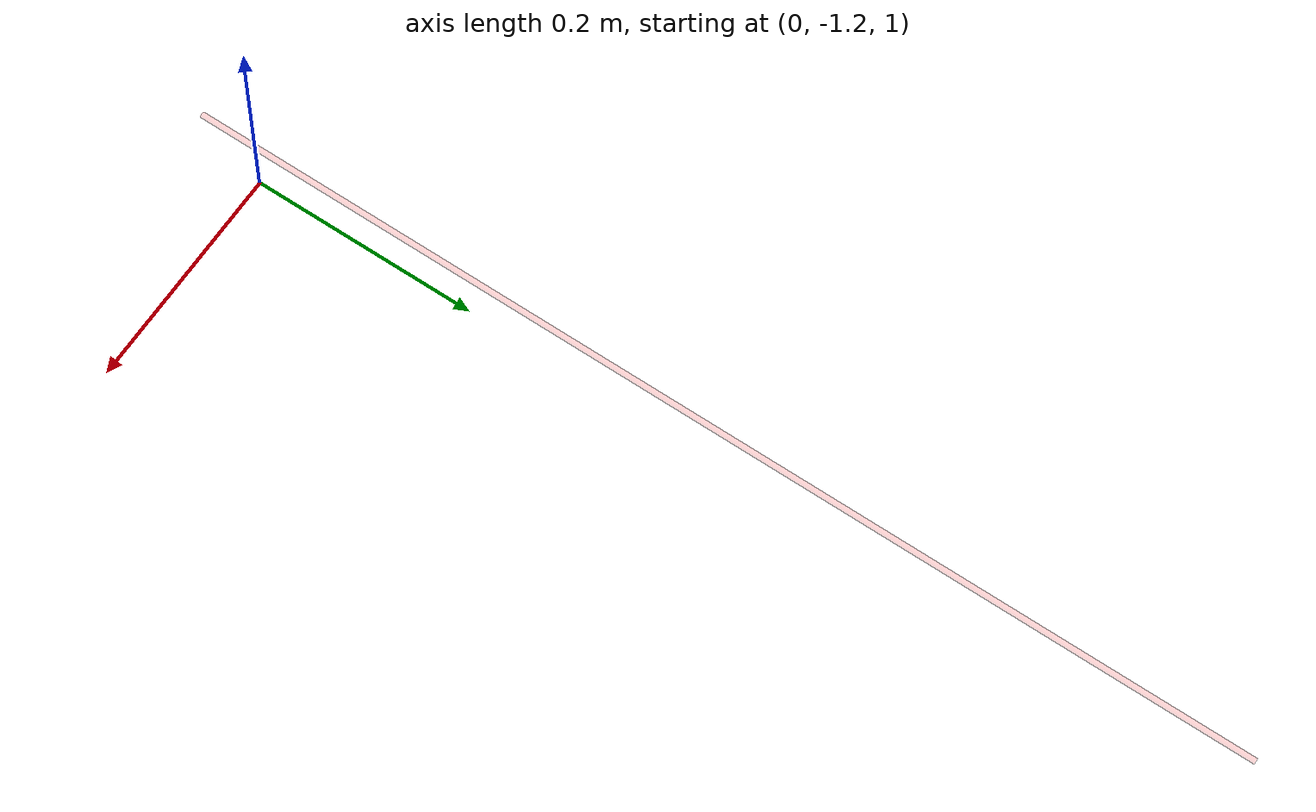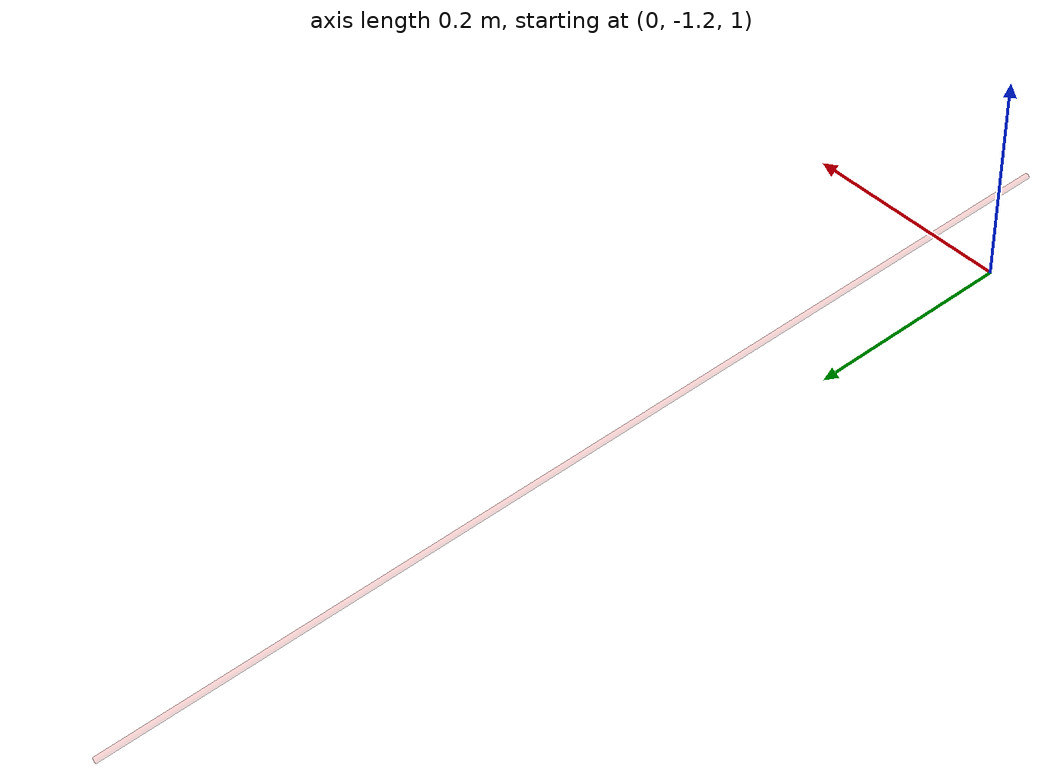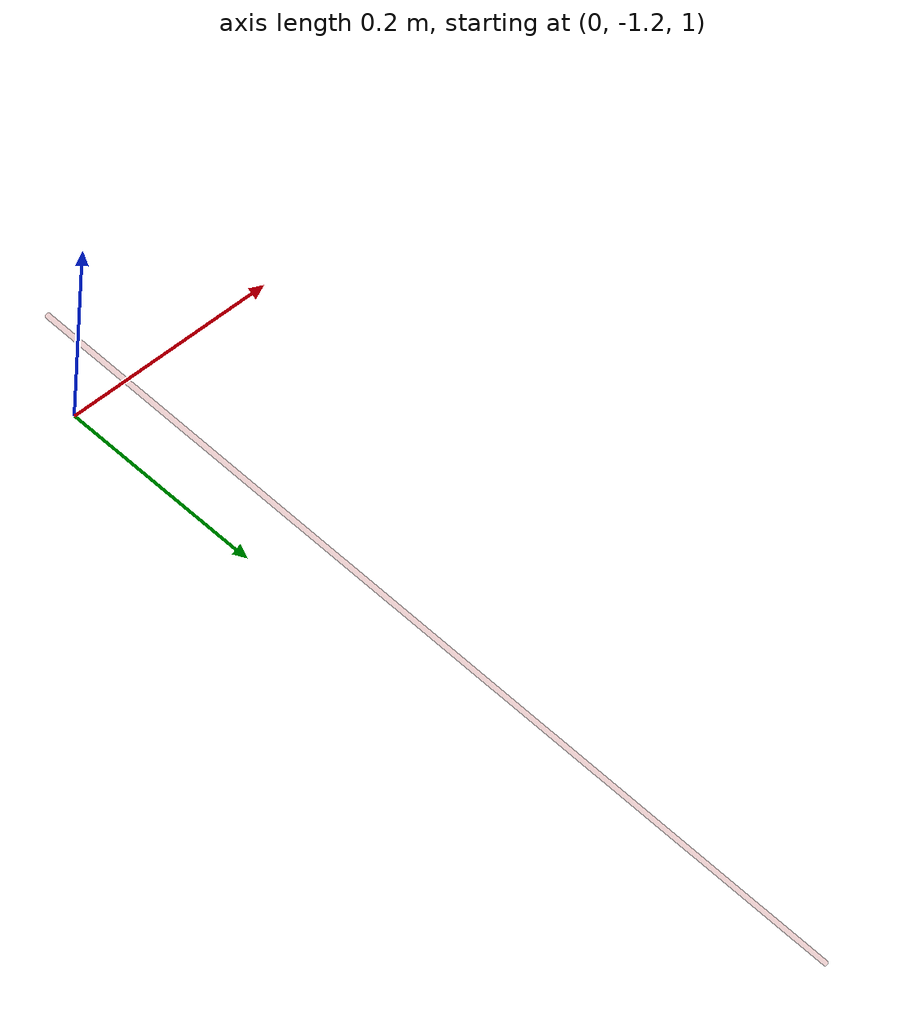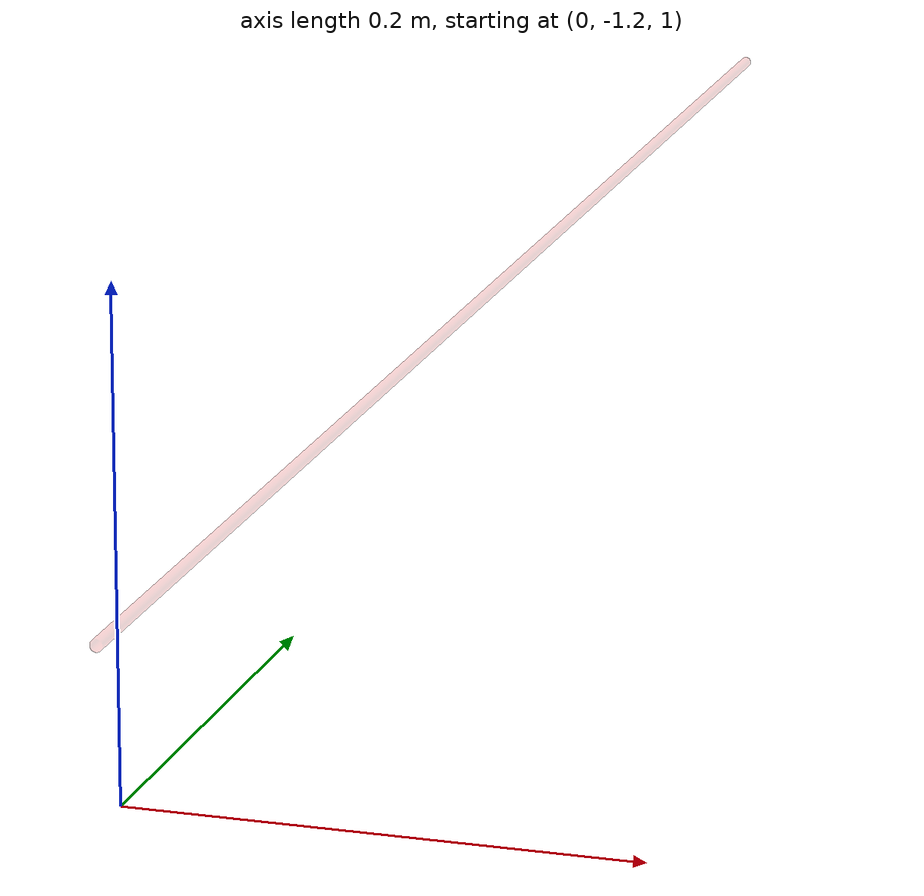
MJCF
<mujoco>
	<compiler meshdir="meshes"/>
	<asset>
		<mesh file="slave/cylinder/cylinder_hull_1.stl"/>
		<mesh file="slave/cylinder/cylinder_hull_2.stl"/>
		<mesh file="slave/cylinder/cylinder_hull_3.stl"/>
		<mesh file="slave/cylinder/cylinder_hull_4.stl"/>
		<mesh file="slave/cylinder/cylinder_hull_5.stl"/>
		<mesh file="slave/cylinder/cylinder_hull_6.stl"/>
		<mesh file="slave/cylinder/cylinder_hull_7.stl"/>
		<mesh file="slave/cylinder/cylinder_hull_8.stl"/>
		<mesh file="slave/cylinder/cylinder_hull_9.stl"/>
		<mesh file="slave/cylinder/cylinder_hull_10.stl"/>
		<mesh file="slave/cylinder/cylinder_hull_11.stl"/>
		<mesh file="slave/cylinder/cylinder_hull_12.stl"/>
		<mesh file="slave/cylinder/cylinder_hull_13.stl"/>
		<mesh file="slave/cylinder/cylinder_hull_14.stl"/>
		<mesh file="slave/cylinder/cylinder_hull_15.stl"/>
		<mesh file="slave/cylinder/cylinder_hull_16.stl"/>
		<mesh file="slave/cylinder/cylinder.stl"/>
	</asset>
	<worldbody>
		<body name="cylinder" pos = "0 -0.023 0">
			<geom type="mesh" mesh="cylinder" rgba=".99 .15 .15 .1" group="0" contype="0" conaffinity="0"/>
			<geom name="c_1" type="mesh" mesh="cylinder_hull_1" rgba=".99 .15 .15 0" group="0" condim="1"/>
			<geom name="c_2" type="mesh" mesh="cylinder_hull_2" rgba=".99 .15 .15 0" group="0" condim="1"/>
			<geom name="c_3" type="mesh" mesh="cylinder_hull_3" rgba=".99 .15 .15 0" group="0" condim="1"/>
			<geom name="c_t" type="mesh" mesh="cylinder_hull_4" rgba=".99 .15 .15 0" group="0" condim="1"/>
			<geom name="c_5" type="mesh" mesh="cylinder_hull_5" rgba=".99 .15 .15 0" group="0" condim="1"/>
			<geom name="c_6" type="mesh" mesh="cylinder_hull_6" rgba=".99 .15 .15 0" group="0" condim="1"/>
			<geom name="c_7" type="mesh" mesh="cylinder_hull_7" rgba=".99 .15 .15 0" group="0" condim="1"/>
			<geom name="c_8" type="mesh" mesh="cylinder_hull_8" rgba=".99 .15 .15 0" group="0" condim="1"/>
			<geom name="c_9" type="mesh" mesh="cylinder_hull_9" rgba=".99 .15 .15 0" group="0" condim="1"/>
			<geom name="c_10" type="mesh" mesh="cylinder_hull_10" rgba=".99 .15 .15 0" group="0" condim="1"/>
			<geom name="c_11" type="mesh" mesh="cylinder_hull_11" rgba=".99 .15 .15 0" group="0" condim="1"/>
			<geom name="c_12" type="mesh" mesh="cylinder_hull_12" rgba=".99 .15 .15 0" group="0" condim="1"/>
			<geom name="c_13" type="mesh" mesh="cylinder_hull_13" rgba=".99 .15 .15 0" group="0" condim="1"/>
			<geom name="c_14" type="mesh" mesh="cylinder_hull_14" rgba=".99 .15 .15 0" group="0" condim="1"/>
			<geom name="c_15" type="mesh" mesh="cylinder_hull_15" rgba=".99 .15 .15 0" group="0" condim="1"/>
			<geom name="c_16" type="mesh" mesh="cylinder_hull_16" rgba=".99 .15 .15 0" group="0" condim="1"/>
		</body>
	</worldbody>
</mujoco>
